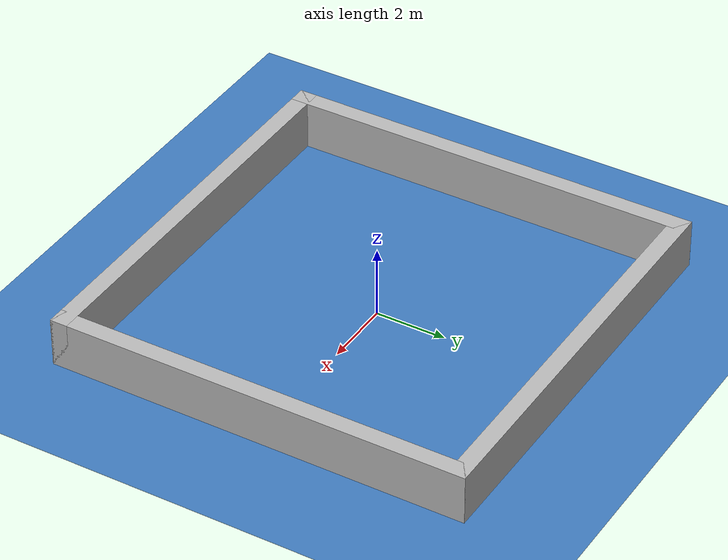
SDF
<?xml version="1.0"?>
<sdf version="1.10">
  <world name="open_water_course">
    <plugin filename="gz-sim-physics-system" name="gz::sim::systems::Physics"/>
    <plugin filename="gz-sim-user-commands-system" name="gz::sim::systems::UserCommands"/>
    <plugin filename="gz-sim-scene-broadcaster-system" name="gz::sim::systems::SceneBroadcaster"/>
    <plugin filename="gz-sim-sensors-system" name="gz::sim::systems::Sensors">
      <render_engine>ogre2</render_engine>
    </plugin>
    <plugin filename="gz-sim-imu-system" name="gz::sim::systems::Imu"/>
    <plugin filename="gz-sim-navsat-system" name="gz::sim::systems::NavSat"/>
    <plugin filename="gz-sim-magnetometer-system" name="gz::sim::systems::Magnetometer"/>

    <physics type="ignored"><max_step_size>0.004</max_step_size><real_time_factor>1.0</real_time_factor><real_time_update_rate>250</real_time_update_rate></physics>
    <gravity>0 0 -9.80665</gravity>
    <light type="directional" name="sun">
      <pose>50 0 150 0 0 0</pose>
      <diffuse>1 1 1 1</diffuse>
      <specular>0.1 0.1 0.1 1</specular>
      <direction>0.3 0.3 -1</direction>
      <cast_shadows>false</cast_shadows>
    </light>
    <include><uri>model://water_surface</uri></include>
    <!-- The 4 m diameter course is obstacle-free. All four walls are inside the
         declared 6 m mapping range at startup and provide LiDAR geometry to DLiO. -->
    <model name="west_wall"><static>true</static><pose>-5.75 0 0.7 0 0 0</pose><link name="body"><collision name="collision"><geometry><box><size>0.5 12 1.4</size></box></geometry></collision><visual name="visual"><geometry><box><size>0.5 12 1.4</size></box></geometry></visual></link></model>
    <model name="east_wall"><static>true</static><pose>5.75 0 0.7 0 0 0</pose><link name="body"><collision name="collision"><geometry><box><size>0.5 12 1.4</size></box></geometry></collision><visual name="visual"><geometry><box><size>0.5 12 1.4</size></box></geometry></visual></link></model>
    <model name="north_wall"><static>true</static><pose>0 5.75 0.7 0 0 0</pose><link name="body"><collision name="collision"><geometry><box><size>12 0.5 1.4</size></box></geometry></collision><visual name="visual"><geometry><box><size>12 0.5 1.4</size></box></geometry></visual></link></model>
    <model name="south_wall"><static>true</static><pose>0 -5.75 0.7 0 0 0</pose><link name="body"><collision name="collision"><geometry><box><size>12 0.5 1.4</size></box></geometry></collision><visual name="visual"><geometry><box><size>12 0.5 1.4</size></box></geometry></visual></link></model>
  </world>
</sdf>

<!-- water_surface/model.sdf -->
<sdf version="1.6">
  <model name="water_surface">
    <static>true</static>

    <link name="water_surface_link">
      <visual name="water_surface_visual">
        <pose>0 0 -0.02 0 0 0</pose>
        <geometry>
          <box>
            <size>2000 2000 0.02</size>
          </box>
        </geometry>
        <material>
          <ambient>0.0 0.3 0.7 1.0</ambient>
          <diffuse>0.0 0.3 0.7 0.7</diffuse>
          <specular>0.1 0.1 0.1 1.0</specular>
        </material>
        <transparency>0.25</transparency>
      </visual>
    </link>
  </model>
</sdf>
